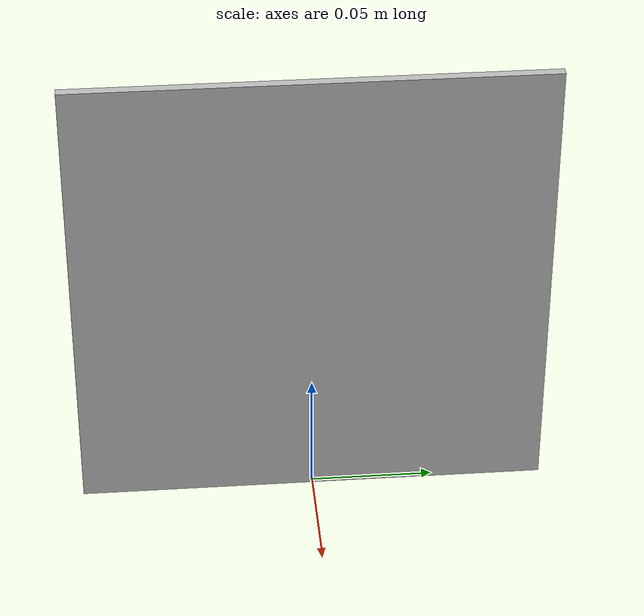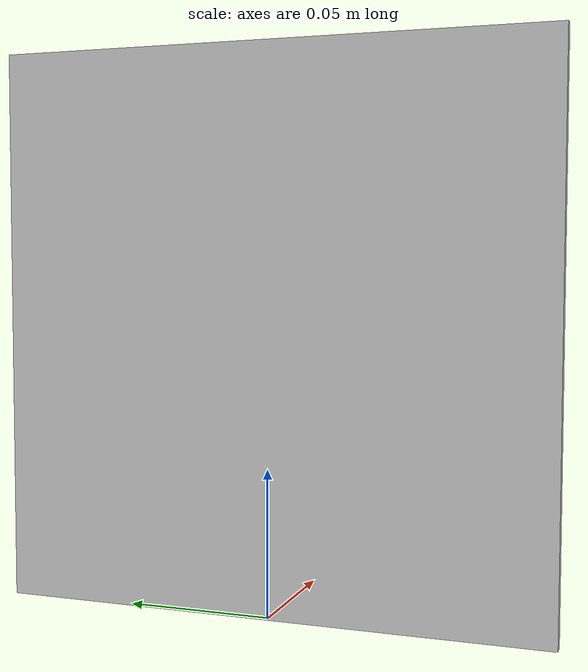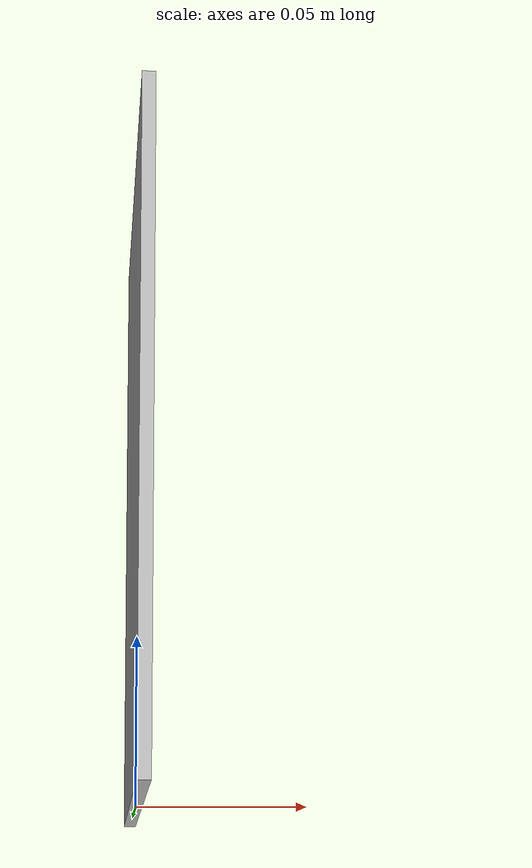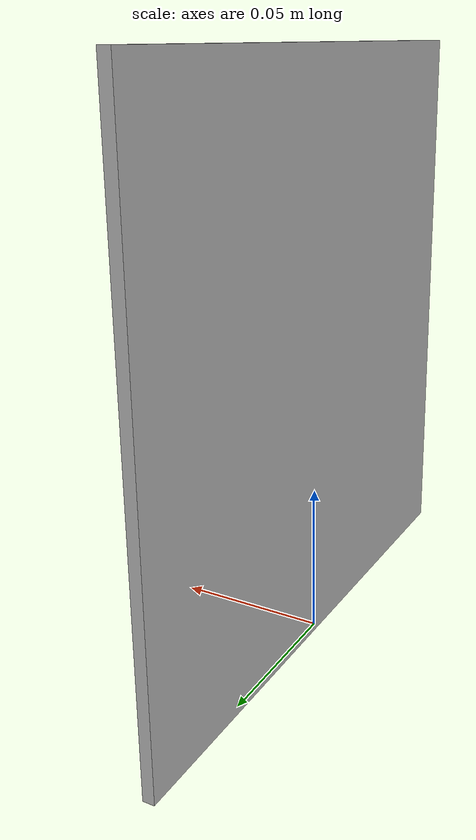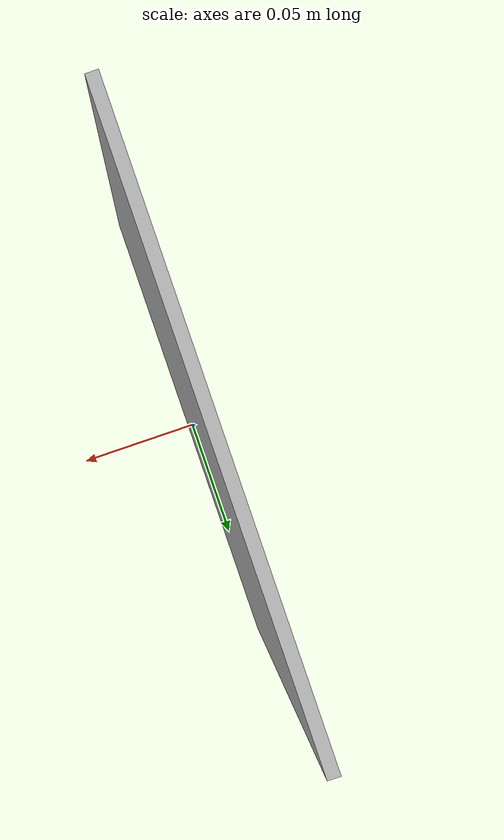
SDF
<?xml version="1.0" ?><sdf version="1.6">
  <model name="aruco_0">
    <static>true</static>
    <link name="link">
      <visual name="visual">
        <geometry>
          <mesh>
            <uri>model://aruco_0/meshes/aruco_0.dae</uri>
          <scale>0.38 0.38 0.38</scale></mesh>
        </geometry>
      </visual>
    </link>
  </model>
</sdf>
